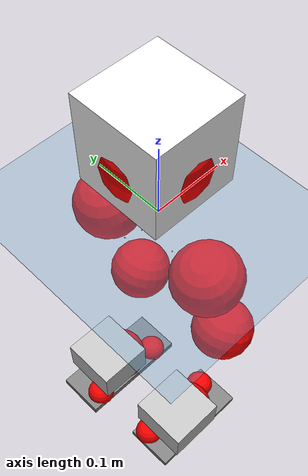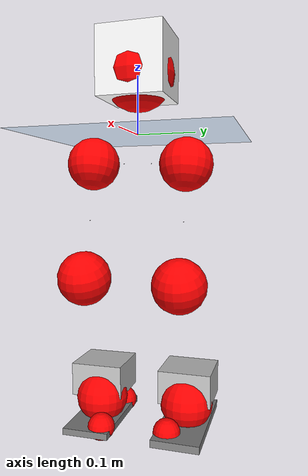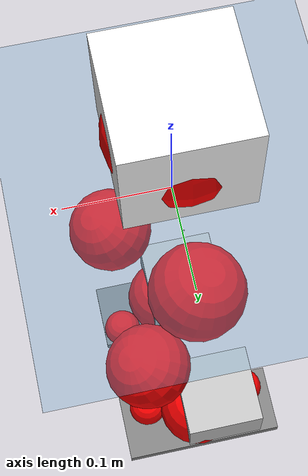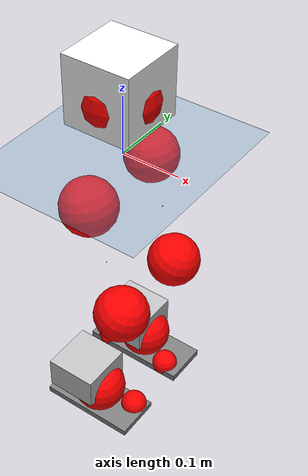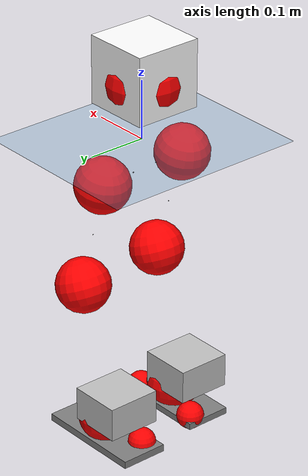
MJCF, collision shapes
<mujoco model="pi_12dof_release_v1">
  <compiler angle="radian" assetdir="assets" balanceinertia="true" inertiafromgeom="false"/>

  <option timestep="0.005" density="1.2" viscosity="2e-05"/>

  <size nkey="1"/>

  <visual>
    <quality shadowsize="8192"/>
    <map shadowclip="0.5"/>
  </visual>

  <default>
    <default class="/">
      <joint armature="0.01" damping="0.01" frictionloss="0.01"/>
      <geom contype="0" conaffinity="0" group="1" solref="-1000 -80"/>
      <site size="0.01 0.005 0.005" group="5"/>
      <general forcelimited="true" biastype="affine" gainprm="20" biasprm="0 -20 -0.5"/>
      <default class="foot">
        <geom size="0.0845 0.036 0.005" type="box" condim="6" group="4" priority="1" friction="0.9 0.2 0.2" solimp="0.015 1 0.005"/>
      </default>
      <default class="reward_collision_sphere">
        <geom group="5" rgba="1 0 0 1"/>
      </default>
    </default>
  </default>

  <asset>
    <texture type="skybox" colorspace="auto" name="//unnamed_texture_0" builtin="gradient" rgb1="0.95 0.95 0.95" rgb2="0.95 0.95 0.95" width="100" height="600"/>
    <texture type="2d" colorspace="auto" name="texplane" builtin="checker" rgb1="0.345 0.575 0.748" rgb2="0.345 0.575 0.748" markrgb="1 1 1" width="512" height="512"/>
    <material name="MatPlane" class="/" texture="texplane" texuniform="true" texrepeat="2 2" specular="0.9"/>
    <mesh name="baselink_1" class="/" file="baselink_1.STL"/>
    <mesh name="r_hip_pitch_link" class="/" file="r_hip_pitch_link.STL"/>
    <mesh name="r_hip_roll_link" class="/" file="r_hip_roll_link.STL"/>
    <mesh name="r_thigh_link" class="/" file="r_thigh_link.STL"/>
    <mesh name="r_calf_link" class="/" file="r_calf_link.STL"/>
    <mesh name="r_ankle_pitch_link" class="/" file="r_ankle_pitch_link.STL"/>
    <mesh name="r_ankle_roll_link" class="/" file="r_ankle_roll_link.STL"/>
    <mesh name="l_hip_pitch_link" class="/" file="l_hip_pitch_link.STL"/>
    <mesh name="l_hip_roll_link" class="/" file="l_hip_roll_link.STL"/>
    <mesh name="l_thigh_link" class="/" file="l_thigh_link.STL"/>
    <mesh name="l_calf_link" class="/" file="l_calf_link.STL"/>
    <mesh name="l_ankle_pitch_link" class="/" file="l_ankle_pitch_link.STL"/>
    <mesh name="l_ankle_roll_link" class="/" file="l_ankle_roll_link.STL"/>
  </asset>

  <worldbody>
    <geom name="floor" class="/" size="100 100 0.125" type="plane" group="0" material="MatPlane"/>
    <light name="toplight_shadow" class="/" pos="0 0 5" dir="0.0990148 0.0990148 -0.990148" type="directional" ambient="0.04 0.04 0.04" diffuse="0.55 0.55 0.55" specular="0.12 0.12 0.12"/>
    <light name="toplight_fill" class="/" pos="0 0 5" dir="0.0990148 0.0990148 -0.990148" type="directional" castshadow="false" ambient="0.04 0.04 0.04" diffuse="0.3 0.3 0.3" specular="0.08 0.08 0.08"/>
    <body name="trunk" pos="-0.00456639 -0.000924817 -0.00154172" quat="0.999999 0.0011212 0.0010747 0.000498255">
      <inertial pos="0.00617741 0.00141878 0.0581308" quat="0.698865 0.0163819 0.000801028 0.715066" mass="3.60721" diaginertia="0.00699529 0.011355 0.0320099"/>
      <joint name="//unnamed_joint_0" type="free"/>
      <geom name="//unnamed_geom_1" class="/" type="mesh" density="0" rgba="1 1 1 1" mesh="baselink_1"/>
      <geom name="//unnamed_geom_2" class="/" size="0.0576989 0.0576989 0.0576989" pos="0 0 0.119076" type="box" rgba="1 1 1 1"/>
      <geom name="//unnamed_geom_3" class="reward_collision_sphere" size="0.0634688" pos="0 0 0.104191"/>
      <site name="imu" class="/" pos="-0.00588664 0.00487349 -0.0143539" size="0.0115398"/>
      <camera name="track" class="/" pos="0 -2.08589 0" quat="0.707107 0.707107 0 0" mode="trackcom"/>
      <camera name="ego_camera" class="/" pos="0.069791 0 0.267921" quat="-0.5 -0.5 0.5 0.5"/>
      <body name="r_hip_pitch_link" pos="0.00175501 -0.0259959 -0.0472698" quat="0.992195 0.000606442 -0.124693 -0.000538578">
        <inertial pos="0.00367674 -0.0571068 -0.00136867" quat="-0.0147753 0.709505 -0.0319464 0.703821" mass="0.57535" diaginertia="7.36039e-05 0.000126718 0.000606703"/>
        <joint name="r_hip_pitch_joint" class="/" pos="0 0 0" axis="0.00670382 -0.999974 -0.00260076" range="-1.7761 1.28905" armature="0.01013" damping="0.00186243" frictionloss="0.0110741"/>
        <geom name="//unnamed_geom_4" class="/" type="mesh" density="0" rgba="0.75294 0.75294 0.75294 1" mesh="r_hip_pitch_link"/>
        <geom name="//unnamed_geom_5" class="/" size="0.000576989 0.000576989 0.000576989" type="box" rgba="0.75294 0.75294 0.75294 1"/>
        <body name="r_hip_roll_link" pos="0.00156071 -0.0562161 0.000483279" quat="0.999999 0.000840202 -0.000323395 0.000484642">
          <inertial pos="-0.00206331 0.000143605 -0.0874737" quat="0.705134 -0.0795842 -0.0825818 0.699737" mass="0.597209" diaginertia="0.000239352 0.000350588 0.0008881"/>
          <joint name="r_hip_roll_joint" class="/" pos="0 0 0" axis="-0.999991 -0.00359238 -0.00230498" stiffness="0.00481979" range="-0.16916 0.508977" armature="0.0103953" damping="0.0244426" frictionloss="0.0104769"/>
          <geom name="//unnamed_geom_6" class="/" type="mesh" density="0" rgba="0.75294 0.75294 0.75294 1" mesh="r_hip_roll_link"/>
          <geom name="//unnamed_geom_7" class="/" size="0.000576989 0.000576989 0.000576989" type="box" rgba="0.75294 0.75294 0.75294 1"/>
          <geom name="//unnamed_geom_8" class="reward_collision_sphere" size="0.0461592"/>
          <body name="r_thigh_link" pos="0.00296778 0.00325613 -0.102962" quat="1 -3.42988e-05 6.76381e-05 0.000138641">
            <inertial pos="0.00173679 0.00225965 -0.0708821" quat="0.731886 0.681392 -0.000702704 0.00684014" mass="0.172126" diaginertia="8.12446e-05 0.000109869 0.000409737"/>
            <joint name="r_thigh_joint" class="/" pos="0 0 0" axis="-0.00139146 -0.00323274 -0.999994" range="-0.274022 0.604601" armature="0.0111735" damping="0.016251" frictionloss="0.0142175"/>
            <geom name="//unnamed_geom_9" class="/" type="mesh" density="0" rgba="0.75294 0.75294 0.75294 1" mesh="r_thigh_link"/>
            <geom name="//unnamed_geom_10" class="/" size="0.000576989 0.000576989 0.000576989" type="box" rgba="0.75294 0.75294 0.75294 1"/>
            <body name="r_calf_link" pos="0.00316645 -2.39715e-05 -0.101301" quat="0.947458 3.64392e-05 0.319879 0.000117328">
              <inertial pos="0.000761646 0.00132749 -0.102638" quat="0.999889 -0.010072 -0.000797151 0.0109437" mass="1.26393" diaginertia="0.0024591 0.00426963 0.00126016"/>
              <joint name="r_calf_joint" class="/" pos="0 0 0" axis="0.00817269 -0.999952 -0.00544508" stiffness="0.01165" range="-1.73223 0.615606" armature="0.0102263" damping="0.021303" frictionloss="0.0109538"/>
              <geom name="//unnamed_geom_11" class="/" type="mesh" density="0" rgba="0.75294 0.75294 0.75294 1" mesh="r_calf_link"/>
              <geom name="//unnamed_geom_12" class="/" size="0.000576989 0.000576989 0.000576989" type="box" rgba="0.75294 0.75294 0.75294 1"/>
              <geom name="//unnamed_geom_13" class="reward_collision_sphere" size="0.0461592"/>
              <body name="r_ankle_pitch_link" pos="-0.000195829 0.00428989 -0.208439" quat="0.98005 -7.43525e-07 -0.198752 2.84066e-05">
                <inertial pos="0.00526049 0.00470897 -0.00169222" quat="0.00226322 0.707272 -0.00229965 0.706934" mass="0.266514" diaginertia="0.00020725 0.000260584 0.00083953"/>
                <joint name="r_ankle_pitch_joint" class="/" pos="0 0 0" axis="-0.0166048 -0.999851 -0.00470403" range="-1.2641 0.510137" armature="0.0119972" damping="0.00754843" frictionloss="0.0119944"/>
                <geom name="//unnamed_geom_14" class="/" type="mesh" density="0" rgba="0.75294 0.75294 0.75294 1" mesh="r_ankle_pitch_link"/>
                <geom name="//unnamed_geom_15" class="/" size="0.0450052 0.0461592 0.0288495" type="box" rgba="0.75294 0.75294 0.75294 1"/>
                <body name="r_ankle_roll_link" pos="0.0716105 0.00422143 -0.00216375" quat="1 0.000311272 -0.000152475 0.000358088">
                  <inertial pos="-0.0208913 0.00111637 -0.0221926" quat="0.559298 0.421866 0.430942 0.568774" mass="0.798438" diaginertia="0.000791291 0.00127853 0.00209682"/>
                  <joint name="r_ankle_roll_joint" class="/" pos="0 0 0" axis="-0.999806 0.0196919 0.000755835" range="-0.08799 0.169899" armature="0.00980334" damping="0" frictionloss="0.0120383"/>
                  <geom name="//unnamed_geom_16" class="/" type="mesh" density="0" rgba="0.75294 0.75294 0.75294 1" mesh="r_ankle_roll_link"/>
                  <geom name="//unnamed_geom_17" class="/" type="mesh" rgba="0.75294 0.75294 0.75294 1" mesh="r_ankle_roll_link"/>
                  <geom name="right_foot" class="foot" size="0.0854368 0.0399795 0.00551255" pos="-0.0474579 0 -0.0654917"/>
                  <geom name="//unnamed_geom_19" class="reward_collision_sphere" size="0.0461592" pos="-0.0465273 0 -0.0297689"/>
                  <geom name="//unnamed_geom_20" class="reward_collision_sphere" size="0.0230796" pos="0.0139582 0.0208589 -0.0595379"/>
                  <geom name="//unnamed_geom_21" class="reward_collision_sphere" size="0.0230796" pos="-0.111666 0.0208589 -0.0595379"/>
                  <site name="right_foot" class="foot" pos="-0.0474579 0 -0.0654917" size="0.0115398"/>
                </body>
              </body>
            </body>
          </body>
        </body>
      </body>
      <body name="l_hip_pitch_link" pos="-0.00143775 0.0229357 -0.047954" quat="0.992208 1.03054e-06 -0.124596 2.83609e-06">
        <inertial pos="0.00295741 0.0529236 0.000438567" quat="-0.0562635 0.692976 0.0285389 0.718195" mass="0.59075" diaginertia="9.38917e-05 0.000134301 0.000731015"/>
        <joint name="l_hip_pitch_joint" class="/" pos="0 0 0" axis="0.0212064 0.999765 0.00439111" range="-1.19917 1.74403" armature="0.0119589" damping="0.0192526" frictionloss="0.0113013"/>
        <geom name="//unnamed_geom_22" class="/" type="mesh" density="0" rgba="0.75294 0.75294 0.75294 1" mesh="l_hip_pitch_link"/>
        <geom name="//unnamed_geom_23" class="/" size="0.000576989 0.000576989 0.000576989" type="box" rgba="0.75294 0.75294 0.75294 1"/>
        <body name="l_hip_roll_link" pos="5.70697e-06 0.0614074 -0.00246669" quat="1 -0.000161558 0.000859827 0.000215838">
          <inertial pos="-0.0019335 -0.000433573 -0.0882634" quat="0.695987 -0.0858705 -0.0763744 0.708798" mass="0.586985" diaginertia="0.000240776 0.00036371 0.000969313"/>
          <joint name="l_hip_roll_joint" class="/" pos="0 0 0" axis="-0.999911 -0.00704716 0.0113151" stiffness="0.0261635" range="-0.539552 0.0892884" armature="0.0103945" damping="0.0075264" frictionloss="0.0101985"/>
          <geom name="//unnamed_geom_24" class="/" type="mesh" density="0" rgba="0.75294 0.75294 0.75294 1" mesh="l_hip_roll_link"/>
          <geom name="//unnamed_geom_25" class="/" size="0.000576989 0.000576989 0.000576989" type="box" rgba="0.75294 0.75294 0.75294 1"/>
          <geom name="//unnamed_geom_26" class="reward_collision_sphere" size="0.0461592"/>
          <body name="l_thigh_link" pos="-0.000457947 0.00101268 -0.0994354" quat="0.999999 -0.00011138 0.00122061 -0.000195502">
            <inertial pos="-0.00201812 -0.00546973 -0.0705434" quat="0.673417 0.739246 -0.00358834 -0.00336928" mass="0.178734" diaginertia="8.87111e-05 0.000121213 0.000459259"/>
            <joint name="l_thigh_joint" class="/" pos="0 0 0" axis="-0.0114574 0.00401971 -0.999926" range="-0.595874 0.289982" armature="0.0121815" damping="0.0162612" frictionloss="0.0122035"/>
            <geom name="//unnamed_geom_27" class="/" type="mesh" density="0" rgba="0.75294 0.75294 0.75294 1" mesh="l_thigh_link"/>
            <geom name="//unnamed_geom_28" class="/" size="0.000576989 0.000576989 0.000576989" type="box" rgba="0.75294 0.75294 0.75294 1"/>
            <body name="l_calf_link" pos="0.00128631 -0.00124583 -0.107193" quat="0.947341 -0.00145644 0.320222 -0.000566115">
              <inertial pos="-0.00366884 0.00294653 -0.0998389" quat="0.999975 0.00278561 0.000724088 0.00641321" mass="1.25046" diaginertia="0.00246144 0.00429669 0.00124814"/>
              <joint name="l_calf_joint" class="/" pos="0 0 0" axis="-0.00356179 0.999991 -0.00213982" range="-0.690263 1.63912" armature="0.0128995" damping="0.00871793" frictionloss="0.0127251"/>
              <geom name="//unnamed_geom_29" class="/" type="mesh" density="0" rgba="0.75294 0.75294 0.75294 1" mesh="l_calf_link"/>
              <geom name="//unnamed_geom_30" class="/" size="0.000576989 0.000576989 0.000576989" type="box" rgba="0.75294 0.75294 0.75294 1"/>
              <geom name="//unnamed_geom_31" class="reward_collision_sphere" size="0.0461592"/>
              <body name="l_ankle_pitch_link" pos="-0.00187542 0.000458567 -0.204172" quat="0.980047 -1.4588e-05 -0.198767 6.16268e-05">
                <inertial pos="0.00233547 -0.00170154 -0.000394187" quat="-0.00154111 0.704776 0.00436894 0.709414" mass="0.277988" diaginertia="0.000208804 0.000274215 0.000869378"/>
                <joint name="l_ankle_pitch_joint" class="/" pos="0 0 0" axis="0.00144081 0.999999 -0.000255723" range="-0.509539 1.33737" armature="0.0113103" damping="0" frictionloss="0.0125589"/>
                <geom name="//unnamed_geom_32" class="/" type="mesh" density="0" rgba="0.75294 0.75294 0.75294 1" mesh="l_ankle_pitch_link"/>
                <geom name="//unnamed_geom_33" class="/" size="0.0450052 0.0461592 0.0288495" type="box" rgba="0.75294 0.75294 0.75294 1"/>
                <body name="l_ankle_roll_link" pos="0.0717809 0.00108485 0.000918116" quat="1 0.000383771 0.000577932 -0.000181635">
                  <inertial pos="-0.0216809 0.000788653 -0.0213168" quat="0.559016 0.427017 0.434778 0.562251" mass="0.79153" diaginertia="0.000815208 0.00127388 0.00203636"/>
                  <joint name="l_ankle_roll_joint" class="/" pos="0 0 0" axis="-0.999827 0.0126904 0.0136268" stiffness="0.0117215" range="-0.144016 0.187272" armature="0.0101146" damping="0.00283682" frictionloss="0.0103688"/>
                  <geom name="//unnamed_geom_34" class="/" type="mesh" density="0" rgba="0.75294 0.75294 0.75294 1" mesh="l_ankle_roll_link"/>
                  <geom name="//unnamed_geom_35" class="/" type="mesh" rgba="0.75294 0.75294 0.75294 1" mesh="l_ankle_roll_link"/>
                  <geom name="left_foot" class="foot" size="0.0952607 0.0402562 0.00620208" pos="-0.0474579 0 -0.0654917"/>
                  <geom name="//unnamed_geom_37" class="reward_collision_sphere" size="0.0461592" pos="-0.0465273 0 -0.0297689"/>
                  <geom name="//unnamed_geom_38" class="reward_collision_sphere" size="0.0230796" pos="0.0139582 -0.0208589 -0.0595379"/>
                  <geom name="//unnamed_geom_39" class="reward_collision_sphere" size="0.0230796" pos="-0.111666 -0.0208589 -0.0595379"/>
                  <site name="left_foot" class="foot" pos="-0.0474579 0 -0.0654917" size="0.0115398"/>
                </body>
              </body>
            </body>
          </body>
        </body>
      </body>
    </body>
  </worldbody>

  <contact>
    <pair class="/" geom1="floor" geom2="right_foot" name="//unnamed_contact_1"/>
    <pair class="/" geom1="floor" geom2="left_foot" name="//unnamed_contact_0"/>
  </contact>

  <actuator>
    <general name="r_hip_pitch_joint" class="/" joint="r_hip_pitch_joint" forcerange="-24.8254 24.8254" gainprm="23.1756" biasprm="0 -23.1756 -0.608137"/>
    <general name="r_hip_roll_joint" class="/" joint="r_hip_roll_joint" forcerange="-24.7027 24.7027" gainprm="23.1756" biasprm="0 -23.1756 -0.608137"/>
    <general name="r_thigh_joint" class="/" joint="r_thigh_joint" forcerange="-22.345 22.345" gainprm="23.1756" biasprm="0 -23.1756 -0.608137"/>
    <general name="r_calf_joint" class="/" joint="r_calf_joint" forcerange="-20.3187 20.3187" gainprm="23.1756" biasprm="0 -23.1756 -0.608137"/>
    <general name="r_ankle_pitch_joint" class="/" joint="r_ankle_pitch_joint" forcerange="-26.4155 26.4155" gainprm="23.1756" biasprm="0 -23.1756 -0.608137"/>
    <general name="r_ankle_roll_joint" class="/" joint="r_ankle_roll_joint" forcerange="-26.8544 26.8544" gainprm="23.1756" biasprm="0 -23.1756 -0.608137"/>
    <general name="l_hip_pitch_joint" class="/" joint="l_hip_pitch_joint" forcerange="-23.6597 23.6597" gainprm="23.1756" biasprm="0 -23.1756 -0.608137"/>
    <general name="l_hip_roll_joint" class="/" joint="l_hip_roll_joint" forcerange="-23.2778 23.2778" gainprm="23.1756" biasprm="0 -23.1756 -0.608137"/>
    <general name="l_thigh_joint" class="/" joint="l_thigh_joint" forcerange="-22.5394 22.5394" gainprm="23.1756" biasprm="0 -23.1756 -0.608137"/>
    <general name="l_calf_joint" class="/" joint="l_calf_joint" forcerange="-24.1682 24.1682" gainprm="23.1756" biasprm="0 -23.1756 -0.608137"/>
    <general name="l_ankle_pitch_joint" class="/" joint="l_ankle_pitch_joint" forcerange="-25.2684 25.2684" gainprm="23.1756" biasprm="0 -23.1756 -0.608137"/>
    <general name="l_ankle_roll_joint" class="/" joint="l_ankle_roll_joint" forcerange="-25.0605 25.0605" gainprm="23.1756" biasprm="0 -23.1756 -0.608137"/>
  </actuator>

  <sensor>
    <gyro site="imu" name="imu_angular_velocity"/>
    <velocimeter site="imu" name="imu_linear_velocity"/>
    <framelinvel objtype="site" objname="left_foot" name="left_foot_global_linear_velocity"/>
    <framelinvel objtype="site" objname="right_foot" name="right_foot_global_linear_velocity"/>
  </sensor>

  <keyframe>
    <key name="home" qpos="0 0 0.291 1 0 0 0 0.4 0 0 -0.8 0.4 0 -0.4 0 0 0.8 -0.4 0"/>
  </keyframe>
</mujoco>
